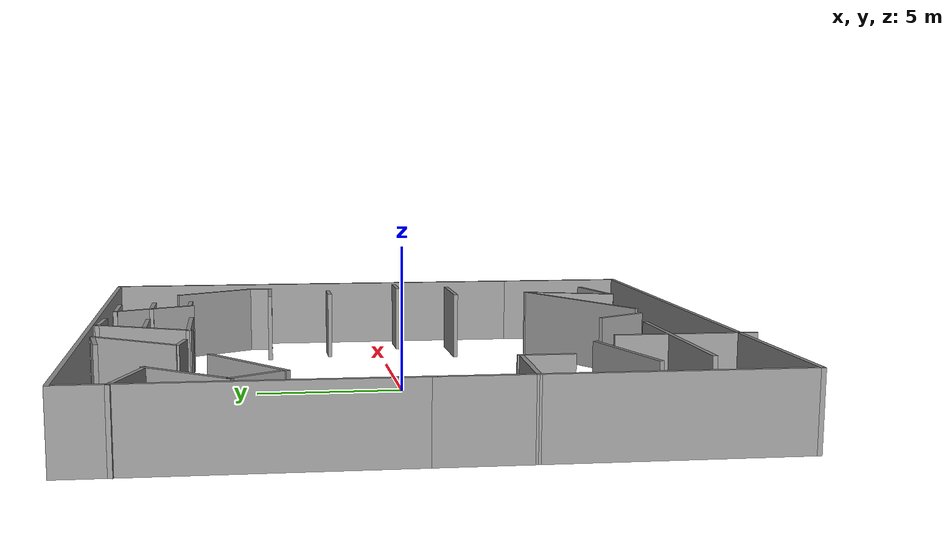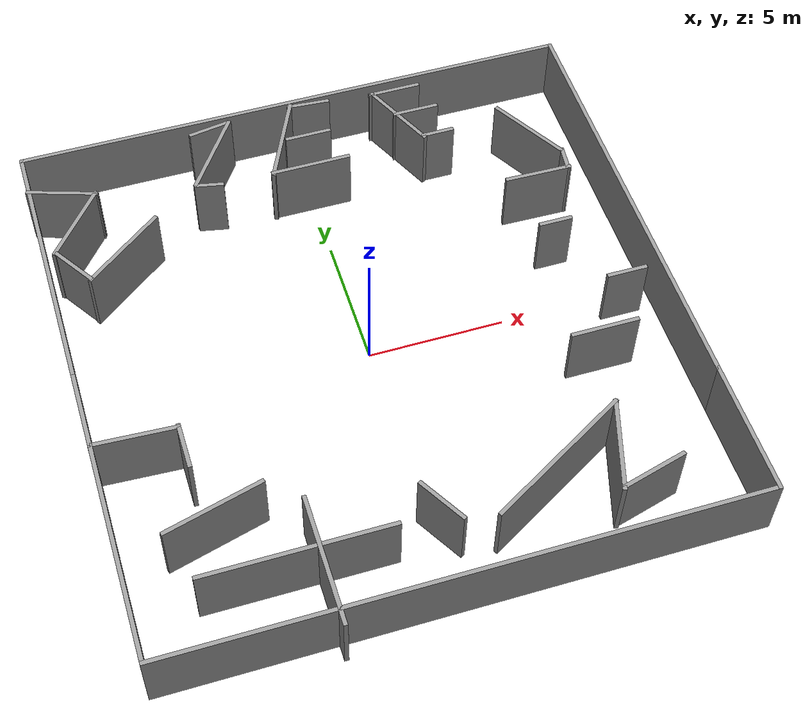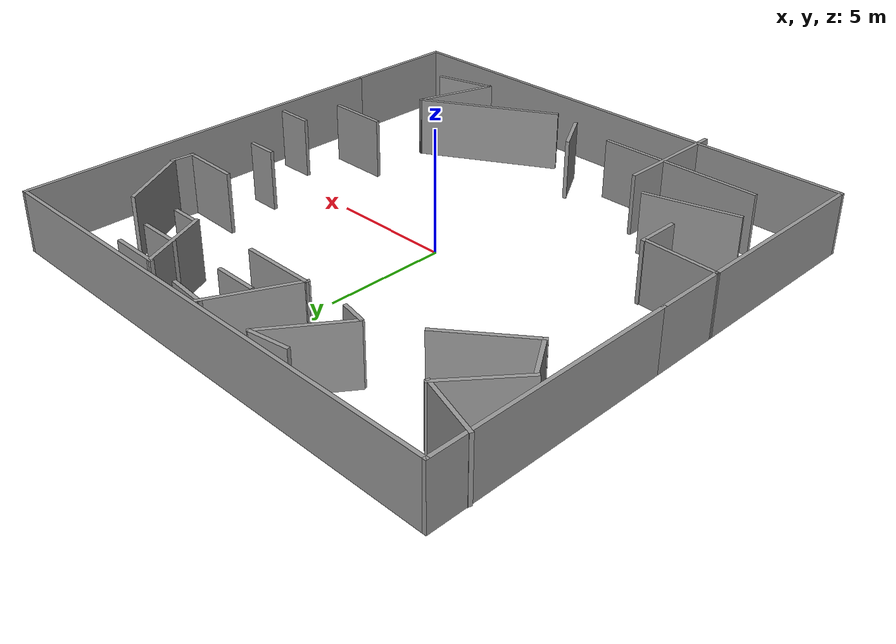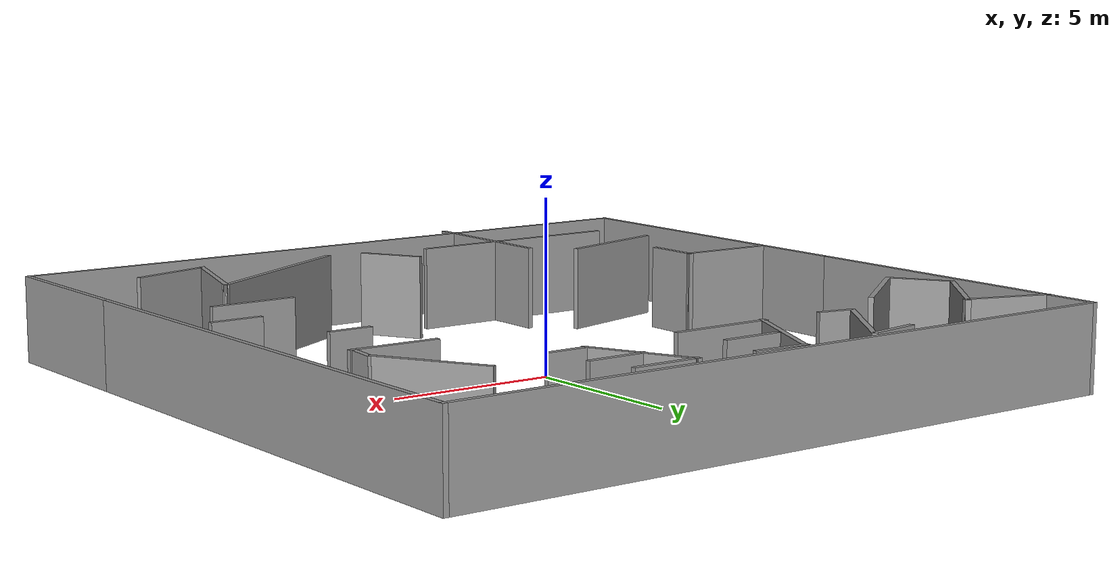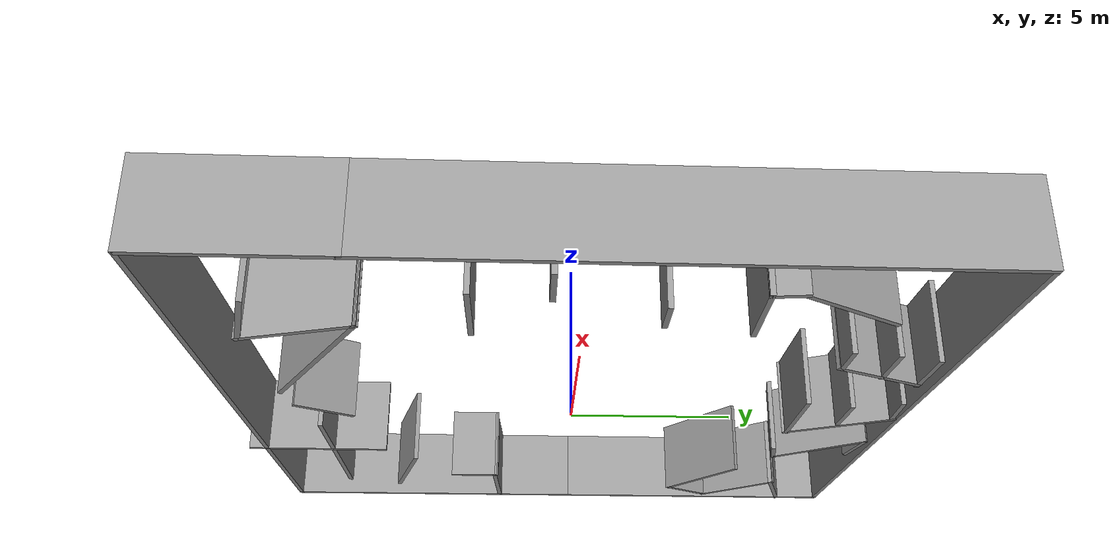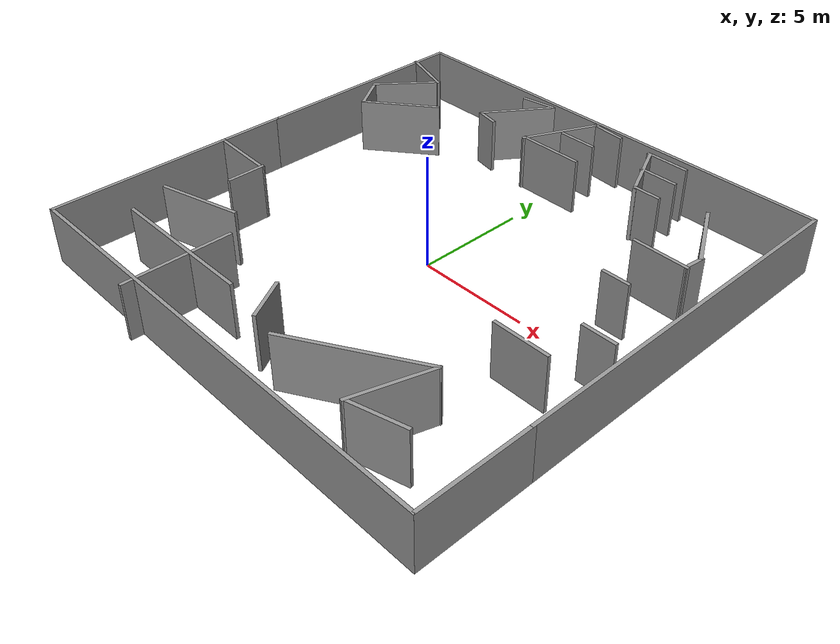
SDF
<?xml version='1.0'?>
<sdf version='1.6'>
  <model name='zee_hall'>
    <pose frame=''>0.105715 -0.249743 0 0 -0 0</pose>
    <link name='Wall_0'>
      <collision name='Wall_0_Collision'>
        <geometry>
          <box>
            <size>3 0.15 2.5</size>
          </box>
        </geometry>
        <pose frame=''>0 0 1.25 0 -0 0</pose>
      </collision>
      <visual name='Wall_0_Visual'>
        <pose frame=''>0 0 1.25 0 -0 0</pose>
        <geometry>
          <box>
            <size>3 0.15 2.5</size>
          </box>
        </geometry>
        <material>
          <script>
            <uri>file://media/materials/scripts/gazebo.material</uri>
            <name>Gazebo/Grey</name>
          </script>
          <ambient>1 1 1 1</ambient>
        </material>
        <meta>
          <layer>0</layer>
        </meta>
      </visual>
      <pose frame=''>-10.3957 -0.785257 0 0 -0 1.5708</pose>
    </link>
    <link name='Wall_10'>
      <collision name='Wall_10_Collision'>
        <geometry>
          <box>
            <size>1.75 0.15 2.5</size>
          </box>
        </geometry>
        <pose frame=''>0 0 1.25 0 -0 0</pose>
      </collision>
      <visual name='Wall_10_Visual'>
        <pose frame=''>0 0 1.25 0 -0 0</pose>
        <geometry>
          <box>
            <size>1.75 0.15 2.5</size>
          </box>
        </geometry>
        <material>
          <script>
            <uri>file://media/materials/scripts/gazebo.material</uri>
            <name>Gazebo/Grey</name>
          </script>
          <ambient>1 1 1 1</ambient>
        </material>
        <meta>
          <layer>0</layer>
        </meta>
      </visual>
      <pose frame=''>-7.45829 -3.10331 0 0 -0 -1.5708</pose>
    </link>
    <link name='Wall_12'>
      <collision name='Wall_12_Collision'>
        <geometry>
          <box>
            <size>3.75 0.15 2.5</size>
          </box>
        </geometry>
        <pose frame=''>0 0 1.25 0 -0 0</pose>
      </collision>
      <visual name='Wall_12_Visual'>
        <pose frame=''>0 0 1.25 0 -0 0</pose>
        <geometry>
          <box>
            <size>3.75 0.15 2.5</size>
          </box>
        </geometry>
        <material>
          <script>
            <uri>file://media/materials/scripts/gazebo.material</uri>
            <name>Gazebo/Grey</name>
          </script>
          <ambient>1 1 1 1</ambient>
        </material>
        <meta>
          <layer>0</layer>
        </meta>
      </visual>
      <pose frame=''>-7.09547 -5.62735 0 0 -0 0.261799</pose>
    </link>
    <link name='Wall_14'>
      <collision name='Wall_14_Collision'>
        <geometry>
          <box>
            <size>4.75 0.15 2.5</size>
          </box>
        </geometry>
        <pose frame=''>0 0 1.25 0 -0 0</pose>
      </collision>
      <visual name='Wall_14_Visual'>
        <pose frame=''>0 0 1.25 0 -0 0</pose>
        <geometry>
          <box>
            <size>4.75 0.15 2.5</size>
          </box>
        </geometry>
        <material>
          <script>
            <uri>file://media/materials/scripts/gazebo.material</uri>
            <name>Gazebo/Grey</name>
          </script>
          <ambient>1 1 1 1</ambient>
        </material>
        <meta>
          <layer>0</layer>
        </meta>
      </visual>
      <pose frame=''>-4.22827 -8.43974 0 0 -0 -1.5708</pose>
    </link>
    <link name='Wall_16'>
      <collision name='Wall_16_Collision'>
        <geometry>
          <box>
            <size>6.75 0.15 2.5</size>
          </box>
        </geometry>
        <pose frame=''>0 0 1.25 0 -0 0</pose>
      </collision>
      <visual name='Wall_16_Visual'>
        <pose frame=''>0 0 1.25 0 -0 0</pose>
        <geometry>
          <box>
            <size>6.75 0.15 2.5</size>
          </box>
        </geometry>
        <material>
          <script>
            <uri>file://media/materials/scripts/gazebo.material</uri>
            <name>Gazebo/Grey</name>
          </script>
          <ambient>1 1 1 1</ambient>
        </material>
        <meta>
          <layer>0</layer>
        </meta>
      </visual>
      <pose frame=''>-4.92933 -7.90765 0 0 -0 0</pose>
    </link>
    <link name='Wall_18'>
      <collision name='Wall_18_Collision'>
        <geometry>
          <box>
            <size>2 0.15 2.5</size>
          </box>
        </geometry>
        <pose frame=''>0 0 1.25 0 -0 0</pose>
      </collision>
      <visual name='Wall_18_Visual'>
        <pose frame=''>0 0 1.25 0 -0 0</pose>
        <geometry>
          <box>
            <size>2 0.15 2.5</size>
          </box>
        </geometry>
        <material>
          <script>
            <uri>file://media/materials/scripts/gazebo.material</uri>
            <name>Gazebo/Grey</name>
          </script>
          <ambient>1 1 1 1</ambient>
        </material>
        <meta>
          <layer>0</layer>
        </meta>
      </visual>
      <pose frame=''>-0.051683 -7.51199 0 0 -0 -1.0472</pose>
    </link>
    <link name='Wall_20'>
      <collision name='Wall_20_Collision'>
        <geometry>
          <box>
            <size>6 0.15 2.5</size>
          </box>
        </geometry>
        <pose frame=''>0 0 1.25 0 -0 0</pose>
      </collision>
      <visual name='Wall_20_Visual'>
        <pose frame=''>0 0 1.25 0 -0 0</pose>
        <geometry>
          <box>
            <size>6 0.15 2.5</size>
          </box>
        </geometry>
        <material>
          <script>
            <uri>file://media/materials/scripts/gazebo.material</uri>
            <name>Gazebo/Grey</name>
          </script>
          <ambient>1 1 1 1</ambient>
        </material>
        <meta>
          <layer>0</layer>
        </meta>
      </visual>
      <pose frame=''>4.12034 -7.04996 0 0 -0 0.523599</pose>
    </link>
    <link name='Wall_21'>
      <collision name='Wall_21_Collision'>
        <geometry>
          <box>
            <size>3.50042 0.15 2.5</size>
          </box>
        </geometry>
        <pose frame=''>0 0 1.25 0 -0 0</pose>
      </collision>
      <visual name='Wall_21_Visual'>
        <pose frame=''>0 0 1.25 0 -0 0</pose>
        <geometry>
          <box>
            <size>3.50042 0.15 2.5</size>
          </box>
        </geometry>
        <material>
          <script>
            <uri>file://media/materials/scripts/gazebo.material</uri>
            <name>Gazebo/Grey</name>
          </script>
          <ambient>1 1 1 1</ambient>
        </material>
        <meta>
          <layer>0</layer>
        </meta>
      </visual>
      <pose frame=''>6.16496 -7.18987 0 0 -0 -1.8667</pose>
    </link>
    <link name='Wall_22'>
      <collision name='Wall_22_Collision'>
        <geometry>
          <box>
            <size>2.5 0.15 2.5</size>
          </box>
        </geometry>
        <pose frame=''>0 0 1.25 0 -0 0</pose>
      </collision>
      <visual name='Wall_22_Visual'>
        <pose frame=''>0 0 1.25 0 -0 0</pose>
        <geometry>
          <box>
            <size>2.5 0.15 2.5</size>
          </box>
        </geometry>
        <material>
          <script>
            <uri>file://media/materials/scripts/gazebo.material</uri>
            <name>Gazebo/Grey</name>
          </script>
          <ambient>1 1 1 1</ambient>
        </material>
        <meta>
          <layer>0</layer>
        </meta>
      </visual>
      <pose frame=''>6.85795 -8.44164 0 0 -0 0.261799</pose>
    </link>
    <link name='Wall_24'>
      <collision name='Wall_24_Collision'>
        <geometry>
          <box>
            <size>2.63963 0.15 2.5</size>
          </box>
        </geometry>
        <pose frame=''>0 0 1.25 0 -0 0</pose>
      </collision>
      <visual name='Wall_24_Visual'>
        <pose frame=''>0 0 1.25 0 -0 0</pose>
        <geometry>
          <box>
            <size>2.63963 0.15 2.5</size>
          </box>
        </geometry>
        <material>
          <script>
            <uri>file://media/materials/scripts/gazebo.material</uri>
            <name>Gazebo/Grey</name>
          </script>
          <ambient>1 1 1 1</ambient>
        </material>
        <meta>
          <layer>0</layer>
        </meta>
      </visual>
      <pose frame=''>-9.25244 8.78355 0 0 -0 -0.318714</pose>
    </link>
    <link name='Wall_25'>
      <collision name='Wall_25_Collision'>
        <geometry>
          <box>
            <size>3.24323 0.15 2.5</size>
          </box>
        </geometry>
        <pose frame=''>0 0 1.25 0 -0 0</pose>
      </collision>
      <visual name='Wall_25_Visual'>
        <pose frame=''>0 0 1.25 0 -0 0</pose>
        <geometry>
          <box>
            <size>3.24323 0.15 2.5</size>
          </box>
        </geometry>
        <material>
          <script>
            <uri>file://media/materials/scripts/gazebo.material</uri>
            <name>Gazebo/Grey</name>
          </script>
          <ambient>1 1 1 1</ambient>
        </material>
        <meta>
          <layer>0</layer>
        </meta>
      </visual>
      <pose frame=''>-9.04457 7.24581 0 0 -0 -2.25226</pose>
    </link>
    <link name='Wall_26'>
      <collision name='Wall_26_Collision'>
        <geometry>
          <box>
            <size>1.89391 0.15 2.5</size>
          </box>
        </geometry>
        <pose frame=''>0 0 1.25 0 -0 0</pose>
      </collision>
      <visual name='Wall_26_Visual'>
        <pose frame=''>0 0 1.25 0 -0 0</pose>
        <geometry>
          <box>
            <size>1.89391 0.15 2.5</size>
          </box>
        </geometry>
        <material>
          <script>
            <uri>file://media/materials/scripts/gazebo.material</uri>
            <name>Gazebo/Grey</name>
          </script>
          <ambient>1 1 1 1</ambient>
        </material>
        <meta>
          <layer>0</layer>
        </meta>
      </visual>
      <pose frame=''>-9.49154 5.31263 0 0 -0 -0.996351</pose>
    </link>
    <link name='Wall_27'>
      <collision name='Wall_27_Collision'>
        <geometry>
          <box>
            <size>3.6309 0.15 2.5</size>
          </box>
        </geometry>
        <pose frame=''>0 0 1.25 0 -0 0</pose>
      </collision>
      <visual name='Wall_27_Visual'>
        <pose frame=''>0 0 1.25 0 -0 0</pose>
        <geometry>
          <box>
            <size>3.6309 0.15 2.5</size>
          </box>
        </geometry>
        <material>
          <script>
            <uri>file://media/materials/scripts/gazebo.material</uri>
            <name>Gazebo/Grey</name>
          </script>
          <ambient>1 1 1 1</ambient>
        </material>
        <meta>
          <layer>0</layer>
        </meta>
      </visual>
      <pose frame=''>-7.63555 5.58482 0 0 -0 0.653174</pose>
    </link>
    <link name='Wall_29'>
      <collision name='Wall_29_Collision'>
        <geometry>
          <box>
            <size>3.25 0.15 2.5</size>
          </box>
        </geometry>
        <pose frame=''>0 0 1.25 0 -0 0</pose>
      </collision>
      <visual name='Wall_29_Visual'>
        <pose frame=''>0 0 1.25 0 -0 0</pose>
        <geometry>
          <box>
            <size>3.25 0.15 2.5</size>
          </box>
        </geometry>
        <material>
          <script>
            <uri>file://media/materials/scripts/gazebo.material</uri>
            <name>Gazebo/Grey</name>
          </script>
          <ambient>1 1 1 1</ambient>
        </material>
        <meta>
          <layer>0</layer>
        </meta>
      </visual>
      <pose frame=''>8.13118 6.80076 0 0 -0 -1.0472</pose>
    </link>
    <link name='Wall_3'>
      <collision name='Wall_3_Collision'>
        <geometry>
          <box>
            <size>10.25 0.15 2.5</size>
          </box>
        </geometry>
        <pose frame=''>0 0 1.25 0 -0 0</pose>
      </collision>
      <visual name='Wall_3_Visual'>
        <pose frame=''>0 0 1.25 0 -0 0</pose>
        <geometry>
          <box>
            <size>10.25 0.15 2.5</size>
          </box>
        </geometry>
        <material>
          <script>
            <uri>file://media/materials/scripts/gazebo.material</uri>
            <name>Gazebo/Grey</name>
          </script>
          <ambient>1 1 1 1</ambient>
        </material>
        <meta>
          <layer>0</layer>
        </meta>
      </visual>
      <pose frame=''>-10.3957 5.68974 0 0 -0 1.5708</pose>
    </link>
    <link name='Wall_30'>
      <collision name='Wall_30_Collision'>
        <geometry>
          <box>
            <size>1.01357 0.15 2.5</size>
          </box>
        </geometry>
        <pose frame=''>0 0 1.25 0 -0 0</pose>
      </collision>
      <visual name='Wall_30_Visual'>
        <pose frame=''>0 0 1.25 0 -0 0</pose>
        <geometry>
          <box>
            <size>1.01357 0.15 2.5</size>
          </box>
        </geometry>
        <material>
          <script>
            <uri>file://media/materials/scripts/gazebo.material</uri>
            <name>Gazebo/Grey</name>
          </script>
          <ambient>1 1 1 1</ambient>
        </material>
        <meta>
          <layer>0</layer>
        </meta>
      </visual>
      <pose frame=''>8.90322 5.02948 0 0 -0 -1.68565</pose>
    </link>
    <link name='Wall_31'>
      <collision name='Wall_31_Collision'>
        <geometry>
          <box>
            <size>2.52398 0.15 2.5</size>
          </box>
        </geometry>
        <pose frame=''>0 0 1.25 0 -0 0</pose>
      </collision>
      <visual name='Wall_31_Visual'>
        <pose frame=''>0 0 1.25 0 -0 0</pose>
        <geometry>
          <box>
            <size>2.52398 0.15 2.5</size>
          </box>
        </geometry>
        <material>
          <script>
            <uri>file://media/materials/scripts/gazebo.material</uri>
            <name>Gazebo/Grey</name>
          </script>
          <ambient>1 1 1 1</ambient>
        </material>
        <meta>
          <layer>0</layer>
        </meta>
      </visual>
      <pose frame=''>7.7135 4.62381 0 0 -0 3.12199</pose>
    </link>
    <link name='Wall_33'>
      <collision name='Wall_33_Collision'>
        <geometry>
          <box>
            <size>1.25 0.15 2.5</size>
          </box>
        </geometry>
        <pose frame=''>0 0 1.25 0 -0 0</pose>
      </collision>
      <visual name='Wall_33_Visual'>
        <pose frame=''>0 0 1.25 0 -0 0</pose>
        <geometry>
          <box>
            <size>1.25 0.15 2.5</size>
          </box>
        </geometry>
        <material>
          <script>
            <uri>file://media/materials/scripts/gazebo.material</uri>
            <name>Gazebo/Grey</name>
          </script>
          <ambient>1 1 1 1</ambient>
        </material>
        <meta>
          <layer>0</layer>
        </meta>
      </visual>
      <pose frame=''>7.50404 2.28109 0 0 -0 3.14159</pose>
    </link>
    <link name='Wall_35'>
      <collision name='Wall_35_Collision'>
        <geometry>
          <box>
            <size>1.5 0.15 2.5</size>
          </box>
        </geometry>
        <pose frame=''>0 0 1.25 0 -0 0</pose>
      </collision>
      <visual name='Wall_35_Visual'>
        <pose frame=''>0 0 1.25 0 -0 0</pose>
        <geometry>
          <box>
            <size>1.5 0.15 2.5</size>
          </box>
        </geometry>
        <material>
          <script>
            <uri>file://media/materials/scripts/gazebo.material</uri>
            <name>Gazebo/Grey</name>
          </script>
          <ambient>1 1 1 1</ambient>
        </material>
        <meta>
          <layer>0</layer>
        </meta>
      </visual>
      <pose frame=''>9.10123 -0.603397 0 0 -0 0</pose>
    </link>
    <link name='Wall_37'>
      <collision name='Wall_37_Collision'>
        <geometry>
          <box>
            <size>2.5 0.15 2.5</size>
          </box>
        </geometry>
        <pose frame=''>0 0 1.25 0 -0 0</pose>
      </collision>
      <visual name='Wall_37_Visual'>
        <pose frame=''>0 0 1.25 0 -0 0</pose>
        <geometry>
          <box>
            <size>2.5 0.15 2.5</size>
          </box>
        </geometry>
        <material>
          <script>
            <uri>file://media/materials/scripts/gazebo.material</uri>
            <name>Gazebo/Grey</name>
          </script>
          <ambient>1 1 1 1</ambient>
        </material>
        <meta>
          <layer>0</layer>
        </meta>
      </visual>
      <pose frame=''>7.46113 -2.65045 0 0 -0 0</pose>
    </link>
    <link name='Wall_4'>
      <collision name='Wall_4_Collision'>
        <geometry>
          <box>
            <size>21 0.15 2.5</size>
          </box>
        </geometry>
        <pose frame=''>0 0 1.25 0 -0 0</pose>
      </collision>
      <visual name='Wall_4_Visual'>
        <pose frame=''>0 0 1.25 0 -0 0</pose>
        <geometry>
          <box>
            <size>21 0.15 2.5</size>
          </box>
        </geometry>
        <material>
          <script>
            <uri>file://media/materials/scripts/gazebo.material</uri>
            <name>Gazebo/Grey</name>
          </script>
          <ambient>1 1 1 1</ambient>
        </material>
        <meta>
          <layer>0</layer>
        </meta>
      </visual>
      <pose frame=''>0.029285 10.7397 0 0 -0 0</pose>
    </link>
    <link name='Wall_40'>
      <collision name='Wall_40_Collision'>
        <geometry>
          <box>
            <size>1.60561 0.15 2.5</size>
          </box>
        </geometry>
        <pose frame=''>0 0 1.25 0 -0 0</pose>
      </collision>
      <visual name='Wall_40_Visual'>
        <pose frame=''>0 0 1.25 0 -0 0</pose>
        <geometry>
          <box>
            <size>1.60561 0.15 2.5</size>
          </box>
        </geometry>
        <material>
          <script>
            <uri>file://media/materials/scripts/gazebo.material</uri>
            <name>Gazebo/Grey</name>
          </script>
          <ambient>1 1 1 1</ambient>
        </material>
        <meta>
          <layer>0</layer>
        </meta>
      </visual>
      <pose frame=''>-3.36874 10.3049 0 0 -0 0.160497</pose>
    </link>
    <link name='Wall_41'>
      <collision name='Wall_41_Collision'>
        <geometry>
          <box>
            <size>3.43224 0.15 2.5</size>
          </box>
        </geometry>
        <pose frame=''>0 0 1.25 0 -0 0</pose>
      </collision>
      <visual name='Wall_41_Visual'>
        <pose frame=''>0 0 1.25 0 -0 0</pose>
        <geometry>
          <box>
            <size>3.43224 0.15 2.5</size>
          </box>
        </geometry>
        <material>
          <script>
            <uri>file://media/materials/scripts/gazebo.material</uri>
            <name>Gazebo/Grey</name>
          </script>
          <ambient>1 1 1 1</ambient>
        </material>
        <meta>
          <layer>0</layer>
        </meta>
      </visual>
      <pose frame=''>-3.5339 9.07962 0 0 -0 -2.18451</pose>
    </link>
    <link name='Wall_42'>
      <collision name='Wall_42_Collision'>
        <geometry>
          <box>
            <size>1.08266 0.15 2.5</size>
          </box>
        </geometry>
        <pose frame=''>0 0 1.25 0 -0 0</pose>
      </collision>
      <visual name='Wall_42_Visual'>
        <pose frame=''>0 0 1.25 0 -0 0</pose>
        <geometry>
          <box>
            <size>1.08266 0.15 2.5</size>
          </box>
        </geometry>
        <material>
          <script>
            <uri>file://media/materials/scripts/gazebo.material</uri>
            <name>Gazebo/Grey</name>
          </script>
          <ambient>1 1 1 1</ambient>
        </material>
        <meta>
          <layer>0</layer>
        </meta>
      </visual>
      <pose frame=''>-4.02208 7.59143 0 0 -0 -0.200881</pose>
    </link>
    <link name='Wall_44'>
      <collision name='Wall_44_Collision'>
        <geometry>
          <box>
            <size>3.6592 0.15 2.5</size>
          </box>
        </geometry>
        <pose frame=''>0 0 1.25 0 -0 0</pose>
      </collision>
      <visual name='Wall_44_Visual'>
        <pose frame=''>0 0 1.25 0 -0 0</pose>
        <geometry>
          <box>
            <size>3.6592 0.15 2.5</size>
          </box>
        </geometry>
        <material>
          <script>
            <uri>file://media/materials/scripts/gazebo.material</uri>
            <name>Gazebo/Grey</name>
          </script>
          <ambient>1 1 1 1</ambient>
        </material>
        <meta>
          <layer>0</layer>
        </meta>
      </visual>
      <pose frame=''>-0.877795 8.99939 0 0 -0 -2.0075</pose>
    </link>
    <link name='Wall_45'>
      <collision name='Wall_45_Collision'>
        <geometry>
          <box>
            <size>3 0.15 2.5</size>
          </box>
        </geometry>
        <pose frame=''>0 0 1.25 0 -0 0</pose>
      </collision>
      <visual name='Wall_45_Visual'>
        <pose frame=''>0 0 1.25 0 -0 0</pose>
        <geometry>
          <box>
            <size>3 0.15 2.5</size>
          </box>
        </geometry>
        <material>
          <script>
            <uri>file://media/materials/scripts/gazebo.material</uri>
            <name>Gazebo/Grey</name>
          </script>
          <ambient>1 1 1 1</ambient>
        </material>
        <meta>
          <layer>0</layer>
        </meta>
      </visual>
      <pose frame=''>-0.194909 7.47098 0 0 -0 0</pose>
    </link>
    <link name='Wall_47'>
      <collision name='Wall_47_Collision'>
        <geometry>
          <box>
            <size>1.75 0.15 2.5</size>
          </box>
        </geometry>
        <pose frame=''>0 0 1.25 0 -0 0</pose>
      </collision>
      <visual name='Wall_47_Visual'>
        <pose frame=''>0 0 1.25 0 -0 0</pose>
        <geometry>
          <box>
            <size>1.75 0.15 2.5</size>
          </box>
        </geometry>
        <material>
          <script>
            <uri>file://media/materials/scripts/gazebo.material</uri>
            <name>Gazebo/Grey</name>
          </script>
          <ambient>1 1 1 1</ambient>
        </material>
        <meta>
          <layer>0</layer>
        </meta>
      </visual>
      <pose frame=''>0.113593 8.94052 0 0 -0 0</pose>
    </link>
    <link name='Wall_49'>
      <collision name='Wall_49_Collision'>
        <geometry>
          <box>
            <size>1.62711 0.15 2.5</size>
          </box>
        </geometry>
        <pose frame=''>0 0 1.25 0 -0 0</pose>
      </collision>
      <visual name='Wall_49_Visual'>
        <pose frame=''>0 0 1.25 0 -0 0</pose>
        <geometry>
          <box>
            <size>1.62711 0.15 2.5</size>
          </box>
        </geometry>
        <material>
          <script>
            <uri>file://media/materials/scripts/gazebo.material</uri>
            <name>Gazebo/Grey</name>
          </script>
          <ambient>1 1 1 1</ambient>
        </material>
        <meta>
          <layer>0</layer>
        </meta>
      </visual>
      <pose frame=''>0.539318 10.4731 0 0 -0 3.06743</pose>
    </link>
    <link name='Wall_5'>
      <collision name='Wall_5_Collision'>
        <geometry>
          <box>
            <size>16.25 0.15 2.5</size>
          </box>
        </geometry>
        <pose frame=''>0 0 1.25 0 -0 0</pose>
      </collision>
      <visual name='Wall_5_Visual'>
        <pose frame=''>0 0 1.25 0 -0 0</pose>
        <geometry>
          <box>
            <size>16.25 0.15 2.5</size>
          </box>
        </geometry>
        <material>
          <script>
            <uri>file://media/materials/scripts/gazebo.material</uri>
            <name>Gazebo/Grey</name>
          </script>
          <ambient>1 1 1 1</ambient>
        </material>
        <meta>
          <layer>0</layer>
        </meta>
      </visual>
      <pose frame=''>10.4543 2.68974 0 0 -0 -1.5708</pose>
    </link>
    <link name='Wall_51'>
      <collision name='Wall_51_Collision'>
        <geometry>
          <box>
            <size>2 0.15 2.5</size>
          </box>
        </geometry>
        <pose frame=''>0 0 1.25 0 -0 0</pose>
      </collision>
      <visual name='Wall_51_Visual'>
        <pose frame=''>0 0 1.25 0 -0 0</pose>
        <geometry>
          <box>
            <size>2 0.15 2.5</size>
          </box>
        </geometry>
        <material>
          <script>
            <uri>file://media/materials/scripts/gazebo.material</uri>
            <name>Gazebo/Grey</name>
          </script>
          <ambient>1 1 1 1</ambient>
        </material>
        <meta>
          <layer>0</layer>
        </meta>
      </visual>
      <pose frame=''>3.89342 10.2321 0 0 -0 3.14159</pose>
    </link>
    <link name='Wall_52'>
      <collision name='Wall_52_Collision'>
        <geometry>
          <box>
            <size>3.06466 0.15 2.5</size>
          </box>
        </geometry>
        <pose frame=''>0 0 1.25 0 -0 0</pose>
      </collision>
      <visual name='Wall_52_Visual'>
        <pose frame=''>0 0 1.25 0 -0 0</pose>
        <geometry>
          <box>
            <size>3.06466 0.15 2.5</size>
          </box>
        </geometry>
        <material>
          <script>
            <uri>file://media/materials/scripts/gazebo.material</uri>
            <name>Gazebo/Grey</name>
          </script>
          <ambient>1 1 1 1</ambient>
        </material>
        <meta>
          <layer>0</layer>
        </meta>
      </visual>
      <pose frame=''>3.63852 8.90796 0 0 -0 -1.14</pose>
    </link>
    <link name='Wall_53'>
      <collision name='Wall_53_Collision'>
        <geometry>
          <box>
            <size>1.25 0.15 2.5</size>
          </box>
        </geometry>
        <pose frame=''>0 0 1.25 0 -0 0</pose>
      </collision>
      <visual name='Wall_53_Visual'>
        <pose frame=''>0 0 1.25 0 -0 0</pose>
        <geometry>
          <box>
            <size>1.25 0.15 2.5</size>
          </box>
        </geometry>
        <material>
          <script>
            <uri>file://media/materials/scripts/gazebo.material</uri>
            <name>Gazebo/Grey</name>
          </script>
          <ambient>1 1 1 1</ambient>
        </material>
        <meta>
          <layer>0</layer>
        </meta>
      </visual>
      <pose frame=''>4.7971 7.64531 0 0 -0 0</pose>
    </link>
    <link name='Wall_55'>
      <collision name='Wall_55_Collision'>
        <geometry>
          <box>
            <size>1.75 0.15 2.5</size>
          </box>
        </geometry>
        <pose frame=''>0 0 1.25 0 -0 0</pose>
      </collision>
      <visual name='Wall_55_Visual'>
        <pose frame=''>0 0 1.25 0 -0 0</pose>
        <geometry>
          <box>
            <size>1.75 0.15 2.5</size>
          </box>
        </geometry>
        <material>
          <script>
            <uri>file://media/materials/scripts/gazebo.material</uri>
            <name>Gazebo/Grey</name>
          </script>
          <ambient>1 1 1 1</ambient>
        </material>
        <meta>
          <layer>0</layer>
        </meta>
      </visual>
      <pose frame=''>4.35925 8.99402 0 0 -0 0</pose>
    </link>
    <link name='Wall_6'>
      <collision name='Wall_6_Collision'>
        <geometry>
          <box>
            <size>5 0.15 2.5</size>
          </box>
        </geometry>
        <pose frame=''>0 0 1.25 0 -0 0</pose>
      </collision>
      <visual name='Wall_6_Visual'>
        <pose frame=''>0 0 1.25 0 -0 0</pose>
        <geometry>
          <box>
            <size>5 0.15 2.5</size>
          </box>
        </geometry>
        <material>
          <script>
            <uri>file://media/materials/scripts/gazebo.material</uri>
            <name>Gazebo/Grey</name>
          </script>
          <ambient>1 1 1 1</ambient>
        </material>
        <meta>
          <layer>0</layer>
        </meta>
      </visual>
      <pose frame=''>10.4543 -7.78526 0 0 -0 -1.5708</pose>
    </link>
    <link name='Wall_7'>
      <collision name='Wall_7_Collision'>
        <geometry>
          <box>
            <size>21 0.15 2.5</size>
          </box>
        </geometry>
        <pose frame=''>0 0 1.25 0 -0 0</pose>
      </collision>
      <visual name='Wall_7_Visual'>
        <pose frame=''>0 0 1.25 0 -0 0</pose>
        <geometry>
          <box>
            <size>21 0.15 2.5</size>
          </box>
        </geometry>
        <material>
          <script>
            <uri>file://media/materials/scripts/gazebo.material</uri>
            <name>Gazebo/Grey</name>
          </script>
          <ambient>1 1 1 1</ambient>
        </material>
        <meta>
          <layer>0</layer>
        </meta>
      </visual>
      <pose frame=''>0.029285 -10.2103 0 0 -0 3.14159</pose>
    </link>
    <link name='Wall_8'>
      <collision name='Wall_8_Collision'>
        <geometry>
          <box>
            <size>8.15 0.15 2.5</size>
          </box>
        </geometry>
        <pose frame=''>0 0 1.25 0 -0 0</pose>
      </collision>
      <visual name='Wall_8_Visual'>
        <pose frame=''>0 0 1.25 0 -0 0</pose>
        <geometry>
          <box>
            <size>8.15 0.15 2.5</size>
          </box>
        </geometry>
        <material>
          <script>
            <uri>file://media/materials/scripts/gazebo.material</uri>
            <name>Gazebo/Grey</name>
          </script>
          <ambient>1 1 1 1</ambient>
        </material>
        <meta>
          <layer>0</layer>
        </meta>
      </visual>
      <pose frame=''>-10.3957 -6.21026 0 0 -0 1.5708</pose>
    </link>
    <link name='Wall_9'>
      <collision name='Wall_9_Collision'>
        <geometry>
          <box>
            <size>3.09074 0.15 2.5</size>
          </box>
        </geometry>
        <pose frame=''>0 0 1.25 0 -0 0</pose>
      </collision>
      <visual name='Wall_9_Visual'>
        <pose frame=''>0 0 1.25 0 -0 0</pose>
        <geometry>
          <box>
            <size>3.09074 0.15 2.5</size>
          </box>
        </geometry>
        <material>
          <script>
            <uri>file://media/materials/scripts/gazebo.material</uri>
            <name>Gazebo/Grey</name>
          </script>
          <ambient>1 1 1 1</ambient>
        </material>
        <meta>
          <layer>0</layer>
        </meta>
      </visual>
      <pose frame=''>-8.927 -2.28004 0 0 -0 -0.047479</pose>
    </link>
    <static>1</static>
  </model>
</sdf>
